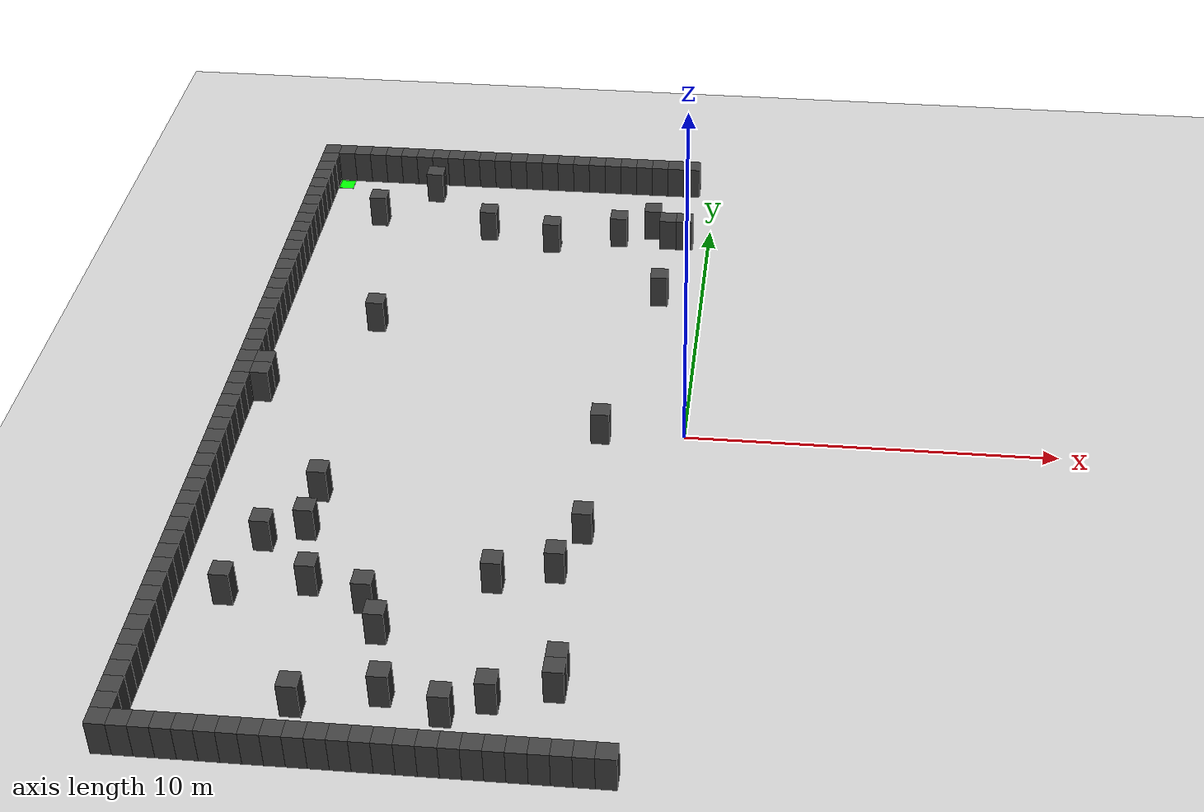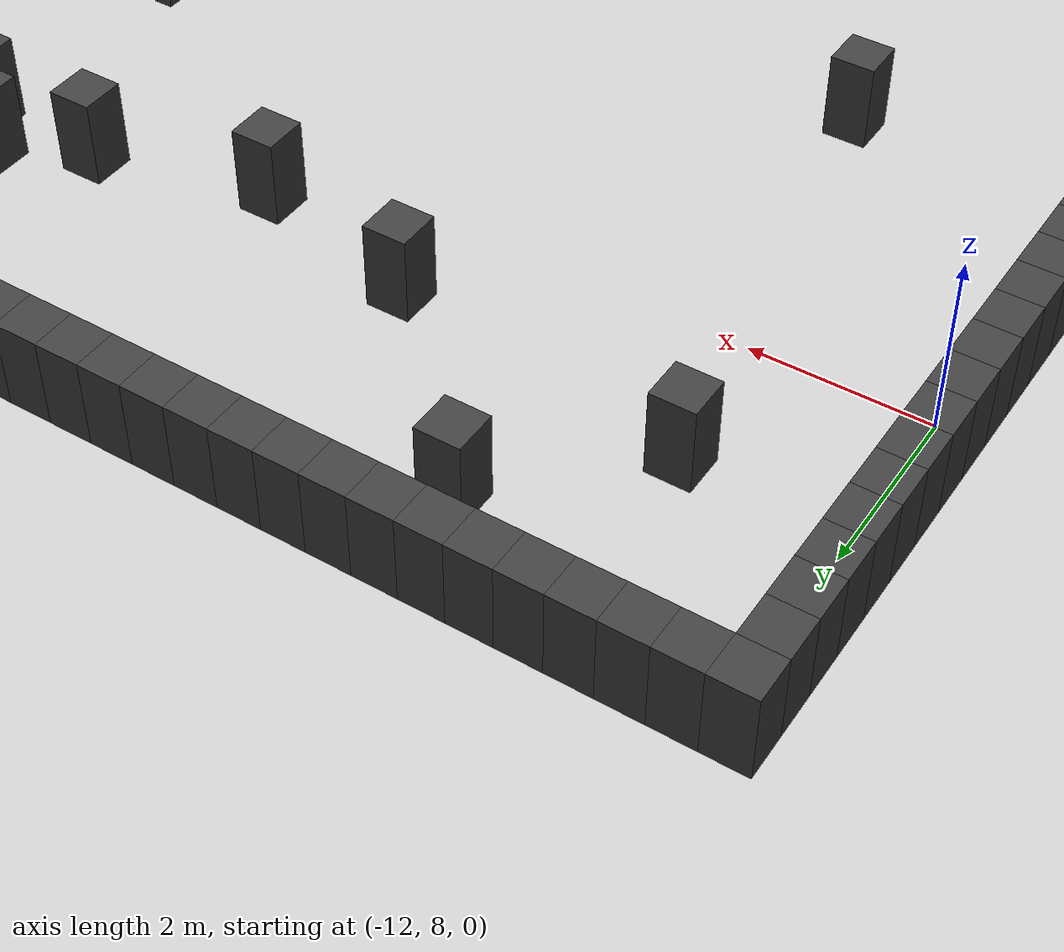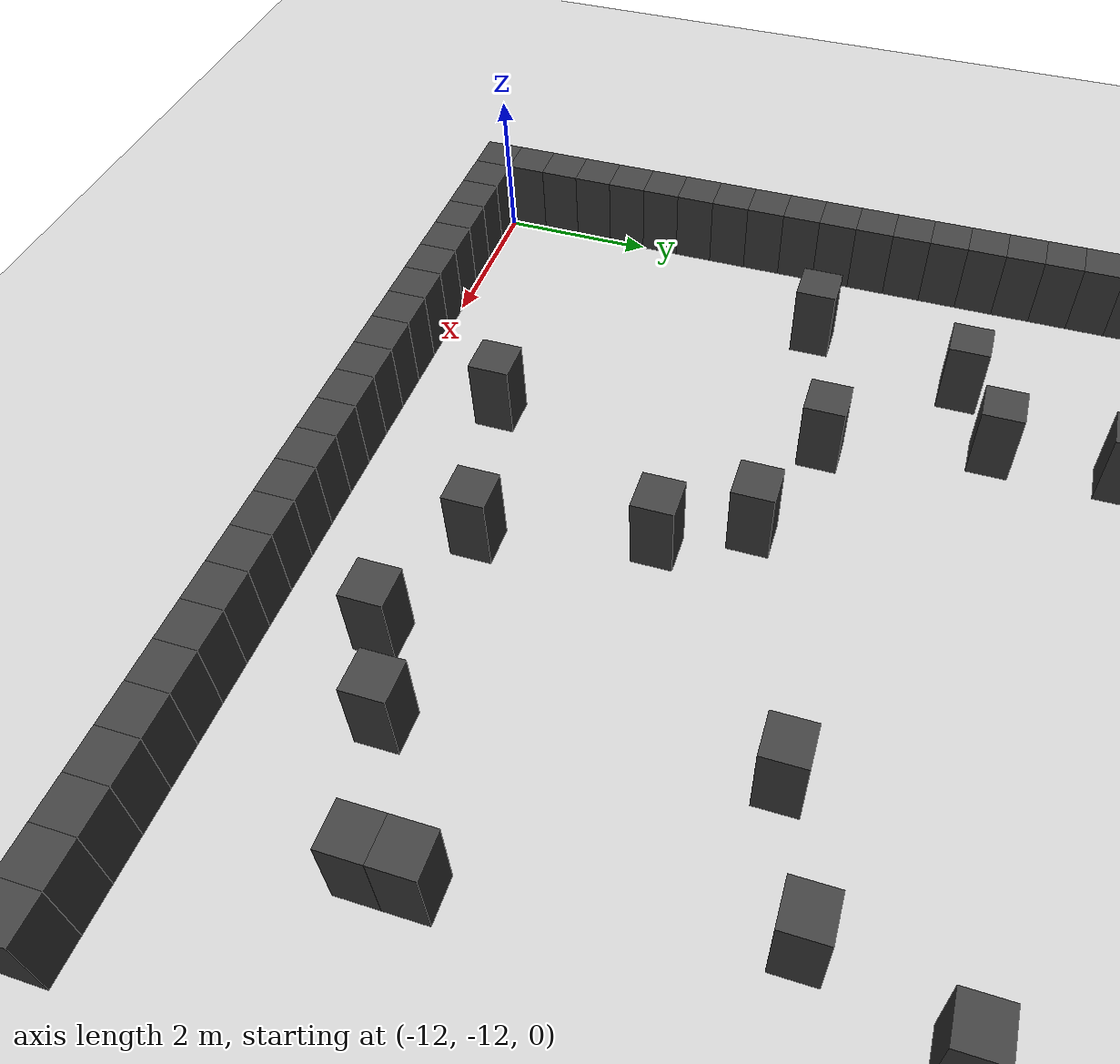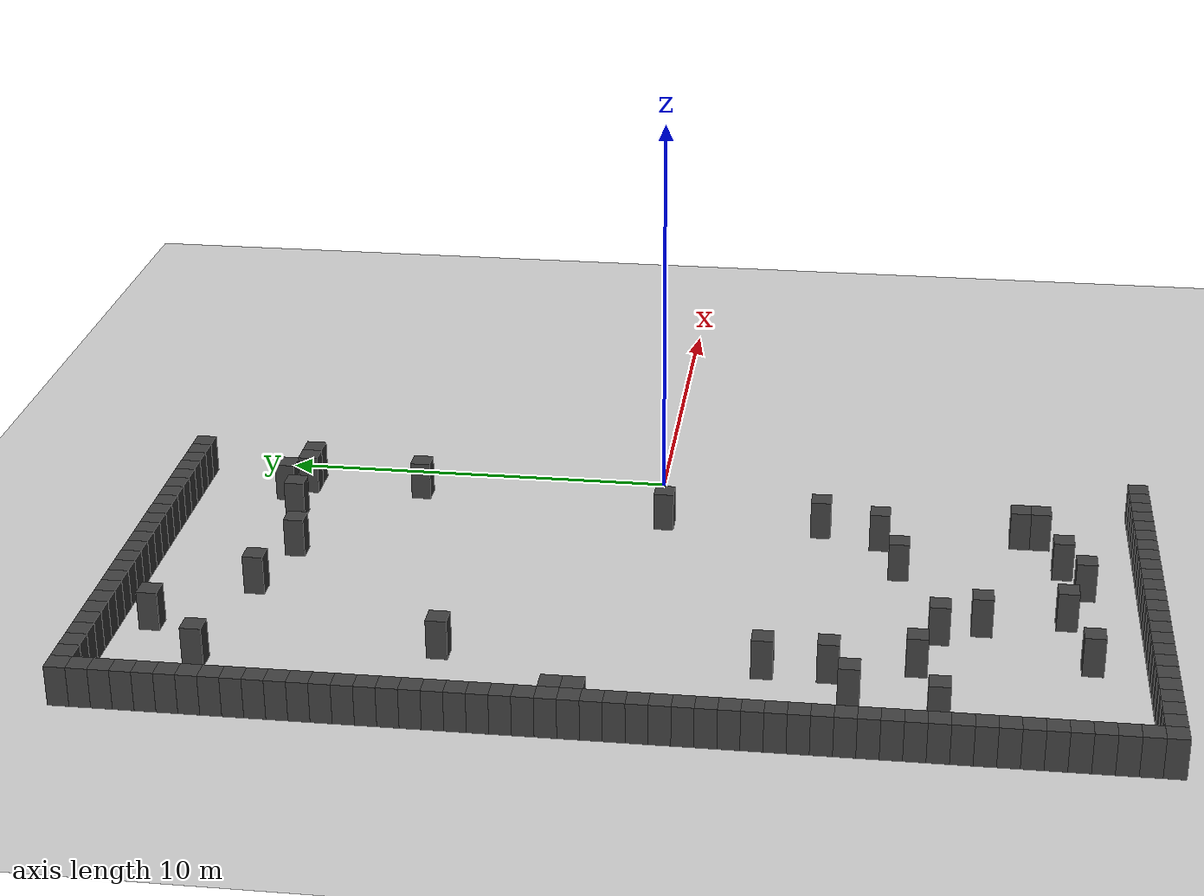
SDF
<sdf version="1.7">
 <world name="map_62">
  <model name="ground_plane">
   <static>true</static>
   <link name="link">
    <collision name="collision">
     <geometry><plane><normal>0 0 1</normal><size>200 200</size></plane></geometry>
    </collision>
    <visual name="visual">
     <geometry><plane><normal>0 0 1</normal><size>200 200</size></plane></geometry>
     <material><ambient>0.8 0.8 0.8 1</ambient><diffuse>0.8 0.8 0.8 1</diffuse></material>
    </visual>
   </link>
  </model>
  <model name="maze_environment">
   <static>true</static>
   <link name="wall_0">
    <pose>-12.250 12.250 0.500 0 0 0</pose>
    <collision name="col"><geometry><box><size>0.5 0.5 1.0</size></box></geometry></collision>
    <visual name="vis">
     <geometry><box><size>0.5 0.5 1.0</size></box></geometry>
     <material><ambient>0.15 0.15 0.15 1</ambient><diffuse>0.25 0.25 0.25 1</diffuse></material>
    </visual>
   </link>
   <link name="wall_1">
    <pose>-11.750 12.250 0.500 0 0 0</pose>
    <collision name="col"><geometry><box><size>0.5 0.5 1.0</size></box></geometry></collision>
    <visual name="vis">
     <geometry><box><size>0.5 0.5 1.0</size></box></geometry>
     <material><ambient>0.15 0.15 0.15 1</ambient><diffuse>0.25 0.25 0.25 1</diffuse></material>
    </visual>
   </link>
   <link name="wall_2">
    <pose>-11.250 12.250 0.500 0 0 0</pose>
    <collision name="col"><geometry><box><size>0.5 0.5 1.0</size></box></geometry></collision>
    <visual name="vis">
     <geometry><box><size>0.5 0.5 1.0</size></box></geometry>
     <material><ambient>0.15 0.15 0.15 1</ambient><diffuse>0.25 0.25 0.25 1</diffuse></material>
    </visual>
   </link>
   <link name="wall_3">
    <pose>-10.750 12.250 0.500 0 0 0</pose>
    <collision name="col"><geometry><box><size>0.5 0.5 1.0</size></box></geometry></collision>
    <visual name="vis">
     <geometry><box><size>0.5 0.5 1.0</size></box></geometry>
     <material><ambient>0.15 0.15 0.15 1</ambient><diffuse>0.25 0.25 0.25 1</diffuse></material>
    </visual>
   </link>
   <link name="wall_4">
    <pose>-10.250 12.250 0.500 0 0 0</pose>
    <collision name="col"><geometry><box><size>0.5 0.5 1.0</size></box></geometry></collision>
    <visual name="vis">
     <geometry><box><size>0.5 0.5 1.0</size></box></geometry>
     <material><ambient>0.15 0.15 0.15 1</ambient><diffuse>0.25 0.25 0.25 1</diffuse></material>
    </visual>
   </link>
   <link name="wall_5">
    <pose>-9.750 12.250 0.500 0 0 0</pose>
    <collision name="col"><geometry><box><size>0.5 0.5 1.0</size></box></geometry></collision>
    <visual name="vis">
     <geometry><box><size>0.5 0.5 1.0</size></box></geometry>
     <material><ambient>0.15 0.15 0.15 1</ambient><diffuse>0.25 0.25 0.25 1</diffuse></material>
    </visual>
   </link>
   <link name="wall_6">
    <pose>-9.250 12.250 0.500 0 0 0</pose>
    <collision name="col"><geometry><box><size>0.5 0.5 1.0</size></box></geometry></collision>
    <visual name="vis">
     <geometry><box><size>0.5 0.5 1.0</size></box></geometry>
     <material><ambient>0.15 0.15 0.15 1</ambient><diffuse>0.25 0.25 0.25 1</diffuse></material>
    </visual>
   </link>
   <link name="wall_7">
    <pose>-8.750 12.250 0.500 0 0 0</pose>
    <collision name="col"><geometry><box><size>0.5 0.5 1.0</size></box></geometry></collision>
    <visual name="vis">
     <geometry><box><size>0.5 0.5 1.0</size></box></geometry>
     <material><ambient>0.15 0.15 0.15 1</ambient><diffuse>0.25 0.25 0.25 1</diffuse></material>
    </visual>
   </link>
   <link name="wall_8">
    <pose>-8.250 12.250 0.500 0 0 0</pose>
    <collision name="col"><geometry><box><size>0.5 0.5 1.0</size></box></geometry></collision>
    <visual name="vis">
     <geometry><box><size>0.5 0.5 1.0</size></box></geometry>
     <material><ambient>0.15 0.15 0.15 1</ambient><diffuse>0.25 0.25 0.25 1</diffuse></material>
    </visual>
   </link>
   <link name="wall_9">
    <pose>-7.750 12.250 0.500 0 0 0</pose>
    <collision name="col"><geometry><box><size>0.5 0.5 1.0</size></box></geometry></collision>
    <visual name="vis">
     <geometry><box><size>0.5 0.5 1.0</size></box></geometry>
     <material><ambient>0.15 0.15 0.15 1</ambient><diffuse>0.25 0.25 0.25 1</diffuse></material>
    </visual>
   </link>
   <link name="wall_10">
    <pose>-7.250 12.250 0.500 0 0 0</pose>
    <collision name="col"><geometry><box><size>0.5 0.5 1.0</size></box></geometry></collision>
    <visual name="vis">
     <geometry><box><size>0.5 0.5 1.0</size></box></geometry>
     <material><ambient>0.15 0.15 0.15 1</ambient><diffuse>0.25 0.25 0.25 1</diffuse></material>
    </visual>
   </link>
   <link name="wall_11">
    <pose>-6.750 12.250 0.500 0 0 0</pose>
    <collision name="col"><geometry><box><size>0.5 0.5 1.0</size></box></geometry></collision>
    <visual name="vis">
     <geometry><box><size>0.5 0.5 1.0</size></box></geometry>
     <material><ambient>0.15 0.15 0.15 1</ambient><diffuse>0.25 0.25 0.25 1</diffuse></material>
    </visual>
   </link>
   <link name="wall_12">
    <pose>-6.250 12.250 0.500 0 0 0</pose>
    <collision name="col"><geometry><box><size>0.5 0.5 1.0</size></box></geometry></collision>
    <visual name="vis">
     <geometry><box><size>0.5 0.5 1.0</size></box></geometry>
     <material><ambient>0.15 0.15 0.15 1</ambient><diffuse>0.25 0.25 0.25 1</diffuse></material>
    </visual>
   </link>
   <link name="wall_13">
    <pose>-5.750 12.250 0.500 0 0 0</pose>
    <collision name="col"><geometry><box><size>0.5 0.5 1.0</size></box></geometry></collision>
    <visual name="vis">
     <geometry><box><size>0.5 0.5 1.0</size></box></geometry>
     <material><ambient>0.15 0.15 0.15 1</ambient><diffuse>0.25 0.25 0.25 1</diffuse></material>
    </visual>
   </link>
   <link name="wall_14">
    <pose>-5.250 12.250 0.500 0 0 0</pose>
    <collision name="col"><geometry><box><size>0.5 0.5 1.0</size></box></geometry></collision>
    <visual name="vis">
     <geometry><box><size>0.5 0.5 1.0</size></box></geometry>
     <material><ambient>0.15 0.15 0.15 1</ambient><diffuse>0.25 0.25 0.25 1</diffuse></material>
    </visual>
   </link>
   <link name="wall_15">
    <pose>-4.750 12.250 0.500 0 0 0</pose>
    <collision name="col"><geometry><box><size>0.5 0.5 1.0</size></box></geometry></collision>
    <visual name="vis">
     <geometry><box><size>0.5 0.5 1.0</size></box></geometry>
     <material><ambient>0.15 0.15 0.15 1</ambient><diffuse>0.25 0.25 0.25 1</diffuse></material>
    </visual>
   </link>
   <link name="wall_16">
    <pose>-4.250 12.250 0.500 0 0 0</pose>
    <collision name="col"><geometry><box><size>0.5 0.5 1.0</size></box></geometry></collision>
    <visual name="vis">
     <geometry><box><size>0.5 0.5 1.0</size></box></geometry>
     <material><ambient>0.15 0.15 0.15 1</ambient><diffuse>0.25 0.25 0.25 1</diffuse></material>
    </visual>
   </link>
   <link name="wall_17">
    <pose>-3.750 12.250 0.500 0 0 0</pose>
    <collision name="col"><geometry><box><size>0.5 0.5 1.0</size></box></geometry></collision>
    <visual name="vis">
     <geometry><box><size>0.5 0.5 1.0</size></box></geometry>
     <material><ambient>0.15 0.15 0.15 1</ambient><diffuse>0.25 0.25 0.25 1</diffuse></material>
    </visual>
   </link>
   <link name="wall_18">
    <pose>-3.250 12.250 0.500 0 0 0</pose>
    <collision name="col"><geometry><box><size>0.5 0.5 1.0</size></box></geometry></collision>
    <visual name="vis">
     <geometry><box><size>0.5 0.5 1.0</size></box></geometry>
     <material><ambient>0.15 0.15 0.15 1</ambient><diffuse>0.25 0.25 0.25 1</diffuse></material>
    </visual>
   </link>
   <link name="wall_19">
    <pose>-2.750 12.250 0.500 0 0 0</pose>
    <collision name="col"><geometry><box><size>0.5 0.5 1.0</size></box></geometry></collision>
    <visual name="vis">
     <geometry><box><size>0.5 0.5 1.0</size></box></geometry>
     <material><ambient>0.15 0.15 0.15 1</ambient><diffuse>0.25 0.25 0.25 1</diffuse></material>
    </visual>
   </link>
   <link name="wall_20">
    <pose>-2.250 12.250 0.500 0 0 0</pose>
    <collision name="col"><geometry><box><size>0.5 0.5 1.0</size></box></geometry></collision>
    <visual name="vis">
     <geometry><box><size>0.5 0.5 1.0</size></box></geometry>
     <material><ambient>0.15 0.15 0.15 1</ambient><diffuse>0.25 0.25 0.25 1</diffuse></material>
    </visual>
   </link>
   <link name="wall_21">
    <pose>-1.750 12.250 0.500 0 0 0</pose>
    <collision name="col"><geometry><box><size>0.5 0.5 1.0</size></box></geometry></collision>
    <visual name="vis">
     <geometry><box><size>0.5 0.5 1.0</size></box></geometry>
     <material><ambient>0.15 0.15 0.15 1</ambient><diffuse>0.25 0.25 0.25 1</diffuse></material>
    </visual>
   </link>
   <link name="wall_22">
    <pose>-1.250 12.250 0.500 0 0 0</pose>
    <collision name="col"><geometry><box><size>0.5 0.5 1.0</size></box></geometry></collision>
    <visual name="vis">
     <geometry><box><size>0.5 0.5 1.0</size></box></geometry>
     <material><ambient>0.15 0.15 0.15 1</ambient><diffuse>0.25 0.25 0.25 1</diffuse></material>
    </visual>
   </link>
   <link name="wall_23">
    <pose>-0.750 12.250 0.500 0 0 0</pose>
    <collision name="col"><geometry><box><size>0.5 0.5 1.0</size></box></geometry></collision>
    <visual name="vis">
     <geometry><box><size>0.5 0.5 1.0</size></box></geometry>
     <material><ambient>0.15 0.15 0.15 1</ambient><diffuse>0.25 0.25 0.25 1</diffuse></material>
    </visual>
   </link>
   <link name="wall_50">
    <pose>-12.250 11.750 0.500 0 0 0</pose>
    <collision name="col"><geometry><box><size>0.5 0.5 1.0</size></box></geometry></collision>
    <visual name="vis">
     <geometry><box><size>0.5 0.5 1.0</size></box></geometry>
     <material><ambient>0.15 0.15 0.15 1</ambient><diffuse>0.25 0.25 0.25 1</diffuse></material>
    </visual>
   </link>
   <link name="wall_52">
    <pose>-12.250 11.250 0.500 0 0 0</pose>
    <collision name="col"><geometry><box><size>0.5 0.5 1.0</size></box></geometry></collision>
    <visual name="vis">
     <geometry><box><size>0.5 0.5 1.0</size></box></geometry>
     <material><ambient>0.15 0.15 0.15 1</ambient><diffuse>0.25 0.25 0.25 1</diffuse></material>
    </visual>
   </link>
   <link name="wall_53">
    <pose>-8.750 11.250 0.500 0 0 0</pose>
    <collision name="col"><geometry><box><size>0.5 0.5 1.0</size></box></geometry></collision>
    <visual name="vis">
     <geometry><box><size>0.5 0.5 1.0</size></box></geometry>
     <material><ambient>0.15 0.15 0.15 1</ambient><diffuse>0.25 0.25 0.25 1</diffuse></material>
    </visual>
   </link>
   <link name="wall_56">
    <pose>-12.250 10.750 0.500 0 0 0</pose>
    <collision name="col"><geometry><box><size>0.5 0.5 1.0</size></box></geometry></collision>
    <visual name="vis">
     <geometry><box><size>0.5 0.5 1.0</size></box></geometry>
     <material><ambient>0.15 0.15 0.15 1</ambient><diffuse>0.25 0.25 0.25 1</diffuse></material>
    </visual>
   </link>
   <link name="wall_58">
    <pose>-12.250 10.250 0.500 0 0 0</pose>
    <collision name="col"><geometry><box><size>0.5 0.5 1.0</size></box></geometry></collision>
    <visual name="vis">
     <geometry><box><size>0.5 0.5 1.0</size></box></geometry>
     <material><ambient>0.15 0.15 0.15 1</ambient><diffuse>0.25 0.25 0.25 1</diffuse></material>
    </visual>
   </link>
   <link name="wall_60">
    <pose>-12.250 9.750 0.500 0 0 0</pose>
    <collision name="col"><geometry><box><size>0.5 0.5 1.0</size></box></geometry></collision>
    <visual name="vis">
     <geometry><box><size>0.5 0.5 1.0</size></box></geometry>
     <material><ambient>0.15 0.15 0.15 1</ambient><diffuse>0.25 0.25 0.25 1</diffuse></material>
    </visual>
   </link>
   <link name="wall_61">
    <pose>-10.250 9.750 0.500 0 0 0</pose>
    <collision name="col"><geometry><box><size>0.5 0.5 1.0</size></box></geometry></collision>
    <visual name="vis">
     <geometry><box><size>0.5 0.5 1.0</size></box></geometry>
     <material><ambient>0.15 0.15 0.15 1</ambient><diffuse>0.25 0.25 0.25 1</diffuse></material>
    </visual>
   </link>
   <link name="wall_62">
    <pose>-1.750 9.750 0.500 0 0 0</pose>
    <collision name="col"><geometry><box><size>0.5 0.5 1.0</size></box></geometry></collision>
    <visual name="vis">
     <geometry><box><size>0.5 0.5 1.0</size></box></geometry>
     <material><ambient>0.15 0.15 0.15 1</ambient><diffuse>0.25 0.25 0.25 1</diffuse></material>
    </visual>
   </link>
   <link name="wall_65">
    <pose>-12.250 9.250 0.500 0 0 0</pose>
    <collision name="col"><geometry><box><size>0.5 0.5 1.0</size></box></geometry></collision>
    <visual name="vis">
     <geometry><box><size>0.5 0.5 1.0</size></box></geometry>
     <material><ambient>0.15 0.15 0.15 1</ambient><diffuse>0.25 0.25 0.25 1</diffuse></material>
    </visual>
   </link>
   <link name="wall_66">
    <pose>-6.750 9.250 0.500 0 0 0</pose>
    <collision name="col"><geometry><box><size>0.5 0.5 1.0</size></box></geometry></collision>
    <visual name="vis">
     <geometry><box><size>0.5 0.5 1.0</size></box></geometry>
     <material><ambient>0.15 0.15 0.15 1</ambient><diffuse>0.25 0.25 0.25 1</diffuse></material>
    </visual>
   </link>
   <link name="wall_67">
    <pose>-2.750 9.250 0.500 0 0 0</pose>
    <collision name="col"><geometry><box><size>0.5 0.5 1.0</size></box></geometry></collision>
    <visual name="vis">
     <geometry><box><size>0.5 0.5 1.0</size></box></geometry>
     <material><ambient>0.15 0.15 0.15 1</ambient><diffuse>0.25 0.25 0.25 1</diffuse></material>
    </visual>
   </link>
   <link name="wall_68">
    <pose>-1.250 9.250 0.500 0 0 0</pose>
    <collision name="col"><geometry><box><size>0.5 0.5 1.0</size></box></geometry></collision>
    <visual name="vis">
     <geometry><box><size>0.5 0.5 1.0</size></box></geometry>
     <material><ambient>0.15 0.15 0.15 1</ambient><diffuse>0.25 0.25 0.25 1</diffuse></material>
    </visual>
   </link>
   <link name="wall_69">
    <pose>-0.750 9.250 0.500 0 0 0</pose>
    <collision name="col"><geometry><box><size>0.5 0.5 1.0</size></box></geometry></collision>
    <visual name="vis">
     <geometry><box><size>0.5 0.5 1.0</size></box></geometry>
     <material><ambient>0.15 0.15 0.15 1</ambient><diffuse>0.25 0.25 0.25 1</diffuse></material>
    </visual>
   </link>
   <link name="wall_72">
    <pose>-12.250 8.750 0.500 0 0 0</pose>
    <collision name="col"><geometry><box><size>0.5 0.5 1.0</size></box></geometry></collision>
    <visual name="vis">
     <geometry><box><size>0.5 0.5 1.0</size></box></geometry>
     <material><ambient>0.15 0.15 0.15 1</ambient><diffuse>0.25 0.25 0.25 1</diffuse></material>
    </visual>
   </link>
   <link name="wall_73">
    <pose>-4.750 8.750 0.500 0 0 0</pose>
    <collision name="col"><geometry><box><size>0.5 0.5 1.0</size></box></geometry></collision>
    <visual name="vis">
     <geometry><box><size>0.5 0.5 1.0</size></box></geometry>
     <material><ambient>0.15 0.15 0.15 1</ambient><diffuse>0.25 0.25 0.25 1</diffuse></material>
    </visual>
   </link>
   <link name="wall_76">
    <pose>-12.250 8.250 0.500 0 0 0</pose>
    <collision name="col"><geometry><box><size>0.5 0.5 1.0</size></box></geometry></collision>
    <visual name="vis">
     <geometry><box><size>0.5 0.5 1.0</size></box></geometry>
     <material><ambient>0.15 0.15 0.15 1</ambient><diffuse>0.25 0.25 0.25 1</diffuse></material>
    </visual>
   </link>
   <link name="wall_78">
    <pose>-12.250 7.750 0.500 0 0 0</pose>
    <collision name="col"><geometry><box><size>0.5 0.5 1.0</size></box></geometry></collision>
    <visual name="vis">
     <geometry><box><size>0.5 0.5 1.0</size></box></geometry>
     <material><ambient>0.15 0.15 0.15 1</ambient><diffuse>0.25 0.25 0.25 1</diffuse></material>
    </visual>
   </link>
   <link name="wall_80">
    <pose>-12.250 7.250 0.500 0 0 0</pose>
    <collision name="col"><geometry><box><size>0.5 0.5 1.0</size></box></geometry></collision>
    <visual name="vis">
     <geometry><box><size>0.5 0.5 1.0</size></box></geometry>
     <material><ambient>0.15 0.15 0.15 1</ambient><diffuse>0.25 0.25 0.25 1</diffuse></material>
    </visual>
   </link>
   <link name="wall_82">
    <pose>-12.250 6.750 0.500 0 0 0</pose>
    <collision name="col"><geometry><box><size>0.5 0.5 1.0</size></box></geometry></collision>
    <visual name="vis">
     <geometry><box><size>0.5 0.5 1.0</size></box></geometry>
     <material><ambient>0.15 0.15 0.15 1</ambient><diffuse>0.25 0.25 0.25 1</diffuse></material>
    </visual>
   </link>
   <link name="wall_84">
    <pose>-12.250 6.250 0.500 0 0 0</pose>
    <collision name="col"><geometry><box><size>0.5 0.5 1.0</size></box></geometry></collision>
    <visual name="vis">
     <geometry><box><size>0.5 0.5 1.0</size></box></geometry>
     <material><ambient>0.15 0.15 0.15 1</ambient><diffuse>0.25 0.25 0.25 1</diffuse></material>
    </visual>
   </link>
   <link name="wall_85">
    <pose>-1.250 6.250 0.500 0 0 0</pose>
    <collision name="col"><geometry><box><size>0.5 0.5 1.0</size></box></geometry></collision>
    <visual name="vis">
     <geometry><box><size>0.5 0.5 1.0</size></box></geometry>
     <material><ambient>0.15 0.15 0.15 1</ambient><diffuse>0.25 0.25 0.25 1</diffuse></material>
    </visual>
   </link>
   <link name="wall_87">
    <pose>-12.250 5.750 0.500 0 0 0</pose>
    <collision name="col"><geometry><box><size>0.5 0.5 1.0</size></box></geometry></collision>
    <visual name="vis">
     <geometry><box><size>0.5 0.5 1.0</size></box></geometry>
     <material><ambient>0.15 0.15 0.15 1</ambient><diffuse>0.25 0.25 0.25 1</diffuse></material>
    </visual>
   </link>
   <link name="wall_91">
    <pose>-12.250 5.250 0.500 0 0 0</pose>
    <collision name="col"><geometry><box><size>0.5 0.5 1.0</size></box></geometry></collision>
    <visual name="vis">
     <geometry><box><size>0.5 0.5 1.0</size></box></geometry>
     <material><ambient>0.15 0.15 0.15 1</ambient><diffuse>0.25 0.25 0.25 1</diffuse></material>
    </visual>
   </link>
   <link name="wall_94">
    <pose>-12.250 4.750 0.500 0 0 0</pose>
    <collision name="col"><geometry><box><size>0.5 0.5 1.0</size></box></geometry></collision>
    <visual name="vis">
     <geometry><box><size>0.5 0.5 1.0</size></box></geometry>
     <material><ambient>0.15 0.15 0.15 1</ambient><diffuse>0.25 0.25 0.25 1</diffuse></material>
    </visual>
   </link>
   <link name="wall_96">
    <pose>-12.250 4.250 0.500 0 0 0</pose>
    <collision name="col"><geometry><box><size>0.5 0.5 1.0</size></box></geometry></collision>
    <visual name="vis">
     <geometry><box><size>0.5 0.5 1.0</size></box></geometry>
     <material><ambient>0.15 0.15 0.15 1</ambient><diffuse>0.25 0.25 0.25 1</diffuse></material>
    </visual>
   </link>
   <link name="wall_97">
    <pose>-9.250 4.250 0.500 0 0 0</pose>
    <collision name="col"><geometry><box><size>0.5 0.5 1.0</size></box></geometry></collision>
    <visual name="vis">
     <geometry><box><size>0.5 0.5 1.0</size></box></geometry>
     <material><ambient>0.15 0.15 0.15 1</ambient><diffuse>0.25 0.25 0.25 1</diffuse></material>
    </visual>
   </link>
   <link name="wall_99">
    <pose>-12.250 3.750 0.500 0 0 0</pose>
    <collision name="col"><geometry><box><size>0.5 0.5 1.0</size></box></geometry></collision>
    <visual name="vis">
     <geometry><box><size>0.5 0.5 1.0</size></box></geometry>
     <material><ambient>0.15 0.15 0.15 1</ambient><diffuse>0.25 0.25 0.25 1</diffuse></material>
    </visual>
   </link>
   <link name="wall_102">
    <pose>-12.250 3.250 0.500 0 0 0</pose>
    <collision name="col"><geometry><box><size>0.5 0.5 1.0</size></box></geometry></collision>
    <visual name="vis">
     <geometry><box><size>0.5 0.5 1.0</size></box></geometry>
     <material><ambient>0.15 0.15 0.15 1</ambient><diffuse>0.25 0.25 0.25 1</diffuse></material>
    </visual>
   </link>
   <link name="wall_104">
    <pose>-12.250 2.750 0.500 0 0 0</pose>
    <collision name="col"><geometry><box><size>0.5 0.5 1.0</size></box></geometry></collision>
    <visual name="vis">
     <geometry><box><size>0.5 0.5 1.0</size></box></geometry>
     <material><ambient>0.15 0.15 0.15 1</ambient><diffuse>0.25 0.25 0.25 1</diffuse></material>
    </visual>
   </link>
   <link name="wall_108">
    <pose>-12.250 2.250 0.500 0 0 0</pose>
    <collision name="col"><geometry><box><size>0.5 0.5 1.0</size></box></geometry></collision>
    <visual name="vis">
     <geometry><box><size>0.5 0.5 1.0</size></box></geometry>
     <material><ambient>0.15 0.15 0.15 1</ambient><diffuse>0.25 0.25 0.25 1</diffuse></material>
    </visual>
   </link>
   <link name="wall_111">
    <pose>-12.250 1.750 0.500 0 0 0</pose>
    <collision name="col"><geometry><box><size>0.5 0.5 1.0</size></box></geometry></collision>
    <visual name="vis">
     <geometry><box><size>0.5 0.5 1.0</size></box></geometry>
     <material><ambient>0.15 0.15 0.15 1</ambient><diffuse>0.25 0.25 0.25 1</diffuse></material>
    </visual>
   </link>
   <link name="wall_113">
    <pose>-12.250 1.250 0.500 0 0 0</pose>
    <collision name="col"><geometry><box><size>0.5 0.5 1.0</size></box></geometry></collision>
    <visual name="vis">
     <geometry><box><size>0.5 0.5 1.0</size></box></geometry>
     <material><ambient>0.15 0.15 0.15 1</ambient><diffuse>0.25 0.25 0.25 1</diffuse></material>
    </visual>
   </link>
   <link name="wall_114">
    <pose>-11.750 1.250 0.500 0 0 0</pose>
    <collision name="col"><geometry><box><size>0.5 0.5 1.0</size></box></geometry></collision>
    <visual name="vis">
     <geometry><box><size>0.5 0.5 1.0</size></box></geometry>
     <material><ambient>0.15 0.15 0.15 1</ambient><diffuse>0.25 0.25 0.25 1</diffuse></material>
    </visual>
   </link>
   <link name="wall_116">
    <pose>-12.250 0.750 0.500 0 0 0</pose>
    <collision name="col"><geometry><box><size>0.5 0.5 1.0</size></box></geometry></collision>
    <visual name="vis">
     <geometry><box><size>0.5 0.5 1.0</size></box></geometry>
     <material><ambient>0.15 0.15 0.15 1</ambient><diffuse>0.25 0.25 0.25 1</diffuse></material>
    </visual>
   </link>
   <link name="wall_117">
    <pose>-11.750 0.750 0.500 0 0 0</pose>
    <collision name="col"><geometry><box><size>0.5 0.5 1.0</size></box></geometry></collision>
    <visual name="vis">
     <geometry><box><size>0.5 0.5 1.0</size></box></geometry>
     <material><ambient>0.15 0.15 0.15 1</ambient><diffuse>0.25 0.25 0.25 1</diffuse></material>
    </visual>
   </link>
   <link name="wall_119">
    <pose>-12.250 0.250 0.500 0 0 0</pose>
    <collision name="col"><geometry><box><size>0.5 0.5 1.0</size></box></geometry></collision>
    <visual name="vis">
     <geometry><box><size>0.5 0.5 1.0</size></box></geometry>
     <material><ambient>0.15 0.15 0.15 1</ambient><diffuse>0.25 0.25 0.25 1</diffuse></material>
    </visual>
   </link>
   <link name="wall_121">
    <pose>-12.250 -0.250 0.500 0 0 0</pose>
    <collision name="col"><geometry><box><size>0.5 0.5 1.0</size></box></geometry></collision>
    <visual name="vis">
     <geometry><box><size>0.5 0.5 1.0</size></box></geometry>
     <material><ambient>0.15 0.15 0.15 1</ambient><diffuse>0.25 0.25 0.25 1</diffuse></material>
    </visual>
   </link>
   <link name="wall_122">
    <pose>-2.250 -0.250 0.500 0 0 0</pose>
    <collision name="col"><geometry><box><size>0.5 0.5 1.0</size></box></geometry></collision>
    <visual name="vis">
     <geometry><box><size>0.5 0.5 1.0</size></box></geometry>
     <material><ambient>0.15 0.15 0.15 1</ambient><diffuse>0.25 0.25 0.25 1</diffuse></material>
    </visual>
   </link>
   <link name="wall_126">
    <pose>-12.250 -0.750 0.500 0 0 0</pose>
    <collision name="col"><geometry><box><size>0.5 0.5 1.0</size></box></geometry></collision>
    <visual name="vis">
     <geometry><box><size>0.5 0.5 1.0</size></box></geometry>
     <material><ambient>0.15 0.15 0.15 1</ambient><diffuse>0.25 0.25 0.25 1</diffuse></material>
    </visual>
   </link>
   <link name="wall_129">
    <pose>-12.250 -1.250 0.500 0 0 0</pose>
    <collision name="col"><geometry><box><size>0.5 0.5 1.0</size></box></geometry></collision>
    <visual name="vis">
     <geometry><box><size>0.5 0.5 1.0</size></box></geometry>
     <material><ambient>0.15 0.15 0.15 1</ambient><diffuse>0.25 0.25 0.25 1</diffuse></material>
    </visual>
   </link>
   <link name="wall_131">
    <pose>-12.250 -1.750 0.500 0 0 0</pose>
    <collision name="col"><geometry><box><size>0.5 0.5 1.0</size></box></geometry></collision>
    <visual name="vis">
     <geometry><box><size>0.5 0.5 1.0</size></box></geometry>
     <material><ambient>0.15 0.15 0.15 1</ambient><diffuse>0.25 0.25 0.25 1</diffuse></material>
    </visual>
   </link>
   <link name="wall_134">
    <pose>-12.250 -2.250 0.500 0 0 0</pose>
    <collision name="col"><geometry><box><size>0.5 0.5 1.0</size></box></geometry></collision>
    <visual name="vis">
     <geometry><box><size>0.5 0.5 1.0</size></box></geometry>
     <material><ambient>0.15 0.15 0.15 1</ambient><diffuse>0.25 0.25 0.25 1</diffuse></material>
    </visual>
   </link>
   <link name="wall_137">
    <pose>-12.250 -2.750 0.500 0 0 0</pose>
    <collision name="col"><geometry><box><size>0.5 0.5 1.0</size></box></geometry></collision>
    <visual name="vis">
     <geometry><box><size>0.5 0.5 1.0</size></box></geometry>
     <material><ambient>0.15 0.15 0.15 1</ambient><diffuse>0.25 0.25 0.25 1</diffuse></material>
    </visual>
   </link>
   <link name="wall_140">
    <pose>-12.250 -3.250 0.500 0 0 0</pose>
    <collision name="col"><geometry><box><size>0.5 0.5 1.0</size></box></geometry></collision>
    <visual name="vis">
     <geometry><box><size>0.5 0.5 1.0</size></box></geometry>
     <material><ambient>0.15 0.15 0.15 1</ambient><diffuse>0.25 0.25 0.25 1</diffuse></material>
    </visual>
   </link>
   <link name="wall_141">
    <pose>-9.250 -3.250 0.500 0 0 0</pose>
    <collision name="col"><geometry><box><size>0.5 0.5 1.0</size></box></geometry></collision>
    <visual name="vis">
     <geometry><box><size>0.5 0.5 1.0</size></box></geometry>
     <material><ambient>0.15 0.15 0.15 1</ambient><diffuse>0.25 0.25 0.25 1</diffuse></material>
    </visual>
   </link>
   <link name="wall_143">
    <pose>-12.250 -3.750 0.500 0 0 0</pose>
    <collision name="col"><geometry><box><size>0.5 0.5 1.0</size></box></geometry></collision>
    <visual name="vis">
     <geometry><box><size>0.5 0.5 1.0</size></box></geometry>
     <material><ambient>0.15 0.15 0.15 1</ambient><diffuse>0.25 0.25 0.25 1</diffuse></material>
    </visual>
   </link>
   <link name="wall_145">
    <pose>-12.250 -4.250 0.500 0 0 0</pose>
    <collision name="col"><geometry><box><size>0.5 0.5 1.0</size></box></geometry></collision>
    <visual name="vis">
     <geometry><box><size>0.5 0.5 1.0</size></box></geometry>
     <material><ambient>0.15 0.15 0.15 1</ambient><diffuse>0.25 0.25 0.25 1</diffuse></material>
    </visual>
   </link>
   <link name="wall_146">
    <pose>-2.250 -4.250 0.500 0 0 0</pose>
    <collision name="col"><geometry><box><size>0.5 0.5 1.0</size></box></geometry></collision>
    <visual name="vis">
     <geometry><box><size>0.5 0.5 1.0</size></box></geometry>
     <material><ambient>0.15 0.15 0.15 1</ambient><diffuse>0.25 0.25 0.25 1</diffuse></material>
    </visual>
   </link>
   <link name="wall_148">
    <pose>-12.250 -4.750 0.500 0 0 0</pose>
    <collision name="col"><geometry><box><size>0.5 0.5 1.0</size></box></geometry></collision>
    <visual name="vis">
     <geometry><box><size>0.5 0.5 1.0</size></box></geometry>
     <material><ambient>0.15 0.15 0.15 1</ambient><diffuse>0.25 0.25 0.25 1</diffuse></material>
    </visual>
   </link>
   <link name="wall_149">
    <pose>-9.250 -4.750 0.500 0 0 0</pose>
    <collision name="col"><geometry><box><size>0.5 0.5 1.0</size></box></geometry></collision>
    <visual name="vis">
     <geometry><box><size>0.5 0.5 1.0</size></box></geometry>
     <material><ambient>0.15 0.15 0.15 1</ambient><diffuse>0.25 0.25 0.25 1</diffuse></material>
    </visual>
   </link>
   <link name="wall_152">
    <pose>-12.250 -5.250 0.500 0 0 0</pose>
    <collision name="col"><geometry><box><size>0.5 0.5 1.0</size></box></geometry></collision>
    <visual name="vis">
     <geometry><box><size>0.5 0.5 1.0</size></box></geometry>
     <material><ambient>0.15 0.15 0.15 1</ambient><diffuse>0.25 0.25 0.25 1</diffuse></material>
    </visual>
   </link>
   <link name="wall_153">
    <pose>-10.250 -5.250 0.500 0 0 0</pose>
    <collision name="col"><geometry><box><size>0.5 0.5 1.0</size></box></geometry></collision>
    <visual name="vis">
     <geometry><box><size>0.5 0.5 1.0</size></box></geometry>
     <material><ambient>0.15 0.15 0.15 1</ambient><diffuse>0.25 0.25 0.25 1</diffuse></material>
    </visual>
   </link>
   <link name="wall_155">
    <pose>-12.250 -5.750 0.500 0 0 0</pose>
    <collision name="col"><geometry><box><size>0.5 0.5 1.0</size></box></geometry></collision>
    <visual name="vis">
     <geometry><box><size>0.5 0.5 1.0</size></box></geometry>
     <material><ambient>0.15 0.15 0.15 1</ambient><diffuse>0.25 0.25 0.25 1</diffuse></material>
    </visual>
   </link>
   <link name="wall_156">
    <pose>-2.750 -5.750 0.500 0 0 0</pose>
    <collision name="col"><geometry><box><size>0.5 0.5 1.0</size></box></geometry></collision>
    <visual name="vis">
     <geometry><box><size>0.5 0.5 1.0</size></box></geometry>
     <material><ambient>0.15 0.15 0.15 1</ambient><diffuse>0.25 0.25 0.25 1</diffuse></material>
    </visual>
   </link>
   <link name="wall_159">
    <pose>-12.250 -6.250 0.500 0 0 0</pose>
    <collision name="col"><geometry><box><size>0.5 0.5 1.0</size></box></geometry></collision>
    <visual name="vis">
     <geometry><box><size>0.5 0.5 1.0</size></box></geometry>
     <material><ambient>0.15 0.15 0.15 1</ambient><diffuse>0.25 0.25 0.25 1</diffuse></material>
    </visual>
   </link>
   <link name="wall_160">
    <pose>-4.250 -6.250 0.500 0 0 0</pose>
    <collision name="col"><geometry><box><size>0.5 0.5 1.0</size></box></geometry></collision>
    <visual name="vis">
     <geometry><box><size>0.5 0.5 1.0</size></box></geometry>
     <material><ambient>0.15 0.15 0.15 1</ambient><diffuse>0.25 0.25 0.25 1</diffuse></material>
    </visual>
   </link>
   <link name="wall_162">
    <pose>-12.250 -6.750 0.500 0 0 0</pose>
    <collision name="col"><geometry><box><size>0.5 0.5 1.0</size></box></geometry></collision>
    <visual name="vis">
     <geometry><box><size>0.5 0.5 1.0</size></box></geometry>
     <material><ambient>0.15 0.15 0.15 1</ambient><diffuse>0.25 0.25 0.25 1</diffuse></material>
    </visual>
   </link>
   <link name="wall_163">
    <pose>-8.750 -6.750 0.500 0 0 0</pose>
    <collision name="col"><geometry><box><size>0.5 0.5 1.0</size></box></geometry></collision>
    <visual name="vis">
     <geometry><box><size>0.5 0.5 1.0</size></box></geometry>
     <material><ambient>0.15 0.15 0.15 1</ambient><diffuse>0.25 0.25 0.25 1</diffuse></material>
    </visual>
   </link>
   <link name="wall_166">
    <pose>-12.250 -7.250 0.500 0 0 0</pose>
    <collision name="col"><geometry><box><size>0.5 0.5 1.0</size></box></geometry></collision>
    <visual name="vis">
     <geometry><box><size>0.5 0.5 1.0</size></box></geometry>
     <material><ambient>0.15 0.15 0.15 1</ambient><diffuse>0.25 0.25 0.25 1</diffuse></material>
    </visual>
   </link>
   <link name="wall_167">
    <pose>-10.750 -7.250 0.500 0 0 0</pose>
    <collision name="col"><geometry><box><size>0.5 0.5 1.0</size></box></geometry></collision>
    <visual name="vis">
     <geometry><box><size>0.5 0.5 1.0</size></box></geometry>
     <material><ambient>0.15 0.15 0.15 1</ambient><diffuse>0.25 0.25 0.25 1</diffuse></material>
    </visual>
   </link>
   <link name="wall_168">
    <pose>-7.250 -7.250 0.500 0 0 0</pose>
    <collision name="col"><geometry><box><size>0.5 0.5 1.0</size></box></geometry></collision>
    <visual name="vis">
     <geometry><box><size>0.5 0.5 1.0</size></box></geometry>
     <material><ambient>0.15 0.15 0.15 1</ambient><diffuse>0.25 0.25 0.25 1</diffuse></material>
    </visual>
   </link>
   <link name="wall_171">
    <pose>-12.250 -7.750 0.500 0 0 0</pose>
    <collision name="col"><geometry><box><size>0.5 0.5 1.0</size></box></geometry></collision>
    <visual name="vis">
     <geometry><box><size>0.5 0.5 1.0</size></box></geometry>
     <material><ambient>0.15 0.15 0.15 1</ambient><diffuse>0.25 0.25 0.25 1</diffuse></material>
    </visual>
   </link>
   <link name="wall_173">
    <pose>-12.250 -8.250 0.500 0 0 0</pose>
    <collision name="col"><geometry><box><size>0.5 0.5 1.0</size></box></geometry></collision>
    <visual name="vis">
     <geometry><box><size>0.5 0.5 1.0</size></box></geometry>
     <material><ambient>0.15 0.15 0.15 1</ambient><diffuse>0.25 0.25 0.25 1</diffuse></material>
    </visual>
   </link>
   <link name="wall_174">
    <pose>-6.750 -8.250 0.500 0 0 0</pose>
    <collision name="col"><geometry><box><size>0.5 0.5 1.0</size></box></geometry></collision>
    <visual name="vis">
     <geometry><box><size>0.5 0.5 1.0</size></box></geometry>
     <material><ambient>0.15 0.15 0.15 1</ambient><diffuse>0.25 0.25 0.25 1</diffuse></material>
    </visual>
   </link>
   <link name="wall_176">
    <pose>-12.250 -8.750 0.500 0 0 0</pose>
    <collision name="col"><geometry><box><size>0.5 0.5 1.0</size></box></geometry></collision>
    <visual name="vis">
     <geometry><box><size>0.5 0.5 1.0</size></box></geometry>
     <material><ambient>0.15 0.15 0.15 1</ambient><diffuse>0.25 0.25 0.25 1</diffuse></material>
    </visual>
   </link>
   <link name="wall_179">
    <pose>-12.250 -9.250 0.500 0 0 0</pose>
    <collision name="col"><geometry><box><size>0.5 0.5 1.0</size></box></geometry></collision>
    <visual name="vis">
     <geometry><box><size>0.5 0.5 1.0</size></box></geometry>
     <material><ambient>0.15 0.15 0.15 1</ambient><diffuse>0.25 0.25 0.25 1</diffuse></material>
    </visual>
   </link>
   <link name="wall_180">
    <pose>-2.250 -9.250 0.500 0 0 0</pose>
    <collision name="col"><geometry><box><size>0.5 0.5 1.0</size></box></geometry></collision>
    <visual name="vis">
     <geometry><box><size>0.5 0.5 1.0</size></box></geometry>
     <material><ambient>0.15 0.15 0.15 1</ambient><diffuse>0.25 0.25 0.25 1</diffuse></material>
    </visual>
   </link>
   <link name="wall_184">
    <pose>-12.250 -9.750 0.500 0 0 0</pose>
    <collision name="col"><geometry><box><size>0.5 0.5 1.0</size></box></geometry></collision>
    <visual name="vis">
     <geometry><box><size>0.5 0.5 1.0</size></box></geometry>
     <material><ambient>0.15 0.15 0.15 1</ambient><diffuse>0.25 0.25 0.25 1</diffuse></material>
    </visual>
   </link>
   <link name="wall_185">
    <pose>-2.250 -9.750 0.500 0 0 0</pose>
    <collision name="col"><geometry><box><size>0.5 0.5 1.0</size></box></geometry></collision>
    <visual name="vis">
     <geometry><box><size>0.5 0.5 1.0</size></box></geometry>
     <material><ambient>0.15 0.15 0.15 1</ambient><diffuse>0.25 0.25 0.25 1</diffuse></material>
    </visual>
   </link>
   <link name="wall_187">
    <pose>-12.250 -10.250 0.500 0 0 0</pose>
    <collision name="col"><geometry><box><size>0.5 0.5 1.0</size></box></geometry></collision>
    <visual name="vis">
     <geometry><box><size>0.5 0.5 1.0</size></box></geometry>
     <material><ambient>0.15 0.15 0.15 1</ambient><diffuse>0.25 0.25 0.25 1</diffuse></material>
    </visual>
   </link>
   <link name="wall_188">
    <pose>-6.250 -10.250 0.500 0 0 0</pose>
    <collision name="col"><geometry><box><size>0.5 0.5 1.0</size></box></geometry></collision>
    <visual name="vis">
     <geometry><box><size>0.5 0.5 1.0</size></box></geometry>
     <material><ambient>0.15 0.15 0.15 1</ambient><diffuse>0.25 0.25 0.25 1</diffuse></material>
    </visual>
   </link>
   <link name="wall_189">
    <pose>-3.750 -10.250 0.500 0 0 0</pose>
    <collision name="col"><geometry><box><size>0.5 0.5 1.0</size></box></geometry></collision>
    <visual name="vis">
     <geometry><box><size>0.5 0.5 1.0</size></box></geometry>
     <material><ambient>0.15 0.15 0.15 1</ambient><diffuse>0.25 0.25 0.25 1</diffuse></material>
    </visual>
   </link>
   <link name="wall_191">
    <pose>-12.250 -10.750 0.500 0 0 0</pose>
    <collision name="col"><geometry><box><size>0.5 0.5 1.0</size></box></geometry></collision>
    <visual name="vis">
     <geometry><box><size>0.5 0.5 1.0</size></box></geometry>
     <material><ambient>0.15 0.15 0.15 1</ambient><diffuse>0.25 0.25 0.25 1</diffuse></material>
    </visual>
   </link>
   <link name="wall_192">
    <pose>-8.250 -10.750 0.500 0 0 0</pose>
    <collision name="col"><geometry><box><size>0.5 0.5 1.0</size></box></geometry></collision>
    <visual name="vis">
     <geometry><box><size>0.5 0.5 1.0</size></box></geometry>
     <material><ambient>0.15 0.15 0.15 1</ambient><diffuse>0.25 0.25 0.25 1</diffuse></material>
    </visual>
   </link>
   <link name="wall_193">
    <pose>-4.750 -10.750 0.500 0 0 0</pose>
    <collision name="col"><geometry><box><size>0.5 0.5 1.0</size></box></geometry></collision>
    <visual name="vis">
     <geometry><box><size>0.5 0.5 1.0</size></box></geometry>
     <material><ambient>0.15 0.15 0.15 1</ambient><diffuse>0.25 0.25 0.25 1</diffuse></material>
    </visual>
   </link>
   <link name="wall_195">
    <pose>-12.250 -11.250 0.500 0 0 0</pose>
    <collision name="col"><geometry><box><size>0.5 0.5 1.0</size></box></geometry></collision>
    <visual name="vis">
     <geometry><box><size>0.5 0.5 1.0</size></box></geometry>
     <material><ambient>0.15 0.15 0.15 1</ambient><diffuse>0.25 0.25 0.25 1</diffuse></material>
    </visual>
   </link>
   <link name="wall_198">
    <pose>-12.250 -11.750 0.500 0 0 0</pose>
    <collision name="col"><geometry><box><size>0.5 0.5 1.0</size></box></geometry></collision>
    <visual name="vis">
     <geometry><box><size>0.5 0.5 1.0</size></box></geometry>
     <material><ambient>0.15 0.15 0.15 1</ambient><diffuse>0.25 0.25 0.25 1</diffuse></material>
    </visual>
   </link>
   <link name="wall_201">
    <pose>-12.250 -12.250 0.500 0 0 0</pose>
    <collision name="col"><geometry><box><size>0.5 0.5 1.0</size></box></geometry></collision>
    <visual name="vis">
     <geometry><box><size>0.5 0.5 1.0</size></box></geometry>
     <material><ambient>0.15 0.15 0.15 1</ambient><diffuse>0.25 0.25 0.25 1</diffuse></material>
    </visual>
   </link>
   <link name="wall_202">
    <pose>-11.750 -12.250 0.500 0 0 0</pose>
    <collision name="col"><geometry><box><size>0.5 0.5 1.0</size></box></geometry></collision>
    <visual name="vis">
     <geometry><box><size>0.5 0.5 1.0</size></box></geometry>
     <material><ambient>0.15 0.15 0.15 1</ambient><diffuse>0.25 0.25 0.25 1</diffuse></material>
    </visual>
   </link>
   <link name="wall_203">
    <pose>-11.250 -12.250 0.500 0 0 0</pose>
    <collision name="col"><geometry><box><size>0.5 0.5 1.0</size></box></geometry></collision>
    <visual name="vis">
     <geometry><box><size>0.5 0.5 1.0</size></box></geometry>
     <material><ambient>0.15 0.15 0.15 1</ambient><diffuse>0.25 0.25 0.25 1</diffuse></material>
    </visual>
   </link>
   <link name="wall_204">
    <pose>-10.750 -12.250 0.500 0 0 0</pose>
    <collision name="col"><geometry><box><size>0.5 0.5 1.0</size></box></geometry></collision>
    <visual name="vis">
     <geometry><box><size>0.5 0.5 1.0</size></box></geometry>
     <material><ambient>0.15 0.15 0.15 1</ambient><diffuse>0.25 0.25 0.25 1</diffuse></material>
    </visual>
   </link>
   <link name="wall_205">
    <pose>-10.250 -12.250 0.500 0 0 0</pose>
    <collision name="col"><geometry><box><size>0.5 0.5 1.0</size></box></geometry></collision>
    <visual name="vis">
     <geometry><box><size>0.5 0.5 1.0</size></box></geometry>
     <material><ambient>0.15 0.15 0.15 1</ambient><diffuse>0.25 0.25 0.25 1</diffuse></material>
    </visual>
   </link>
   <link name="wall_206">
    <pose>-9.750 -12.250 0.500 0 0 0</pose>
    <collision name="col"><geometry><box><size>0.5 0.5 1.0</size></box></geometry></collision>
    <visual name="vis">
     <geometry><box><size>0.5 0.5 1.0</size></box></geometry>
     <material><ambient>0.15 0.15 0.15 1</ambient><diffuse>0.25 0.25 0.25 1</diffuse></material>
    </visual>
   </link>
   <link name="wall_207">
    <pose>-9.250 -12.250 0.500 0 0 0</pose>
    <collision name="col"><geometry><box><size>0.5 0.5 1.0</size></box></geometry></collision>
    <visual name="vis">
     <geometry><box><size>0.5 0.5 1.0</size></box></geometry>
     <material><ambient>0.15 0.15 0.15 1</ambient><diffuse>0.25 0.25 0.25 1</diffuse></material>
    </visual>
   </link>
   <link name="wall_208">
    <pose>-8.750 -12.250 0.500 0 0 0</pose>
    <collision name="col"><geometry><box><size>0.5 0.5 1.0</size></box></geometry></collision>
    <visual name="vis">
     <geometry><box><size>0.5 0.5 1.0</size></box></geometry>
     <material><ambient>0.15 0.15 0.15 1</ambient><diffuse>0.25 0.25 0.25 1</diffuse></material>
    </visual>
   </link>
   <link name="wall_209">
    <pose>-8.250 -12.250 0.500 0 0 0</pose>
    <collision name="col"><geometry><box><size>0.5 0.5 1.0</size></box></geometry></collision>
    <visual name="vis">
     <geometry><box><size>0.5 0.5 1.0</size></box></geometry>
     <material><ambient>0.15 0.15 0.15 1</ambient><diffuse>0.25 0.25 0.25 1</diffuse></material>
    </visual>
   </link>
   <link name="wall_210">
    <pose>-7.750 -12.250 0.500 0 0 0</pose>
    <collision name="col"><geometry><box><size>0.5 0.5 1.0</size></box></geometry></collision>
    <visual name="vis">
     <geometry><box><size>0.5 0.5 1.0</size></box></geometry>
     <material><ambient>0.15 0.15 0.15 1</ambient><diffuse>0.25 0.25 0.25 1</diffuse></material>
    </visual>
   </link>
   <link name="wall_211">
    <pose>-7.250 -12.250 0.500 0 0 0</pose>
    <collision name="col"><geometry><box><size>0.5 0.5 1.0</size></box></geometry></collision>
    <visual name="vis">
     <geometry><box><size>0.5 0.5 1.0</size></box></geometry>
     <material><ambient>0.15 0.15 0.15 1</ambient><diffuse>0.25 0.25 0.25 1</diffuse></material>
    </visual>
   </link>
   <link name="wall_212">
    <pose>-6.750 -12.250 0.500 0 0 0</pose>
    <collision name="col"><geometry><box><size>0.5 0.5 1.0</size></box></geometry></collision>
    <visual name="vis">
     <geometry><box><size>0.5 0.5 1.0</size></box></geometry>
     <material><ambient>0.15 0.15 0.15 1</ambient><diffuse>0.25 0.25 0.25 1</diffuse></material>
    </visual>
   </link>
   <link name="wall_213">
    <pose>-6.250 -12.250 0.500 0 0 0</pose>
    <collision name="col"><geometry><box><size>0.5 0.5 1.0</size></box></geometry></collision>
    <visual name="vis">
     <geometry><box><size>0.5 0.5 1.0</size></box></geometry>
     <material><ambient>0.15 0.15 0.15 1</ambient><diffuse>0.25 0.25 0.25 1</diffuse></material>
    </visual>
   </link>
   <link name="wall_214">
    <pose>-5.750 -12.250 0.500 0 0 0</pose>
    <collision name="col"><geometry><box><size>0.5 0.5 1.0</size></box></geometry></collision>
    <visual name="vis">
     <geometry><box><size>0.5 0.5 1.0</size></box></geometry>
     <material><ambient>0.15 0.15 0.15 1</ambient><diffuse>0.25 0.25 0.25 1</diffuse></material>
    </visual>
   </link>
   <link name="wall_215">
    <pose>-5.250 -12.250 0.500 0 0 0</pose>
    <collision name="col"><geometry><box><size>0.5 0.5 1.0</size></box></geometry></collision>
    <visual name="vis">
     <geometry><box><size>0.5 0.5 1.0</size></box></geometry>
     <material><ambient>0.15 0.15 0.15 1</ambient><diffuse>0.25 0.25 0.25 1</diffuse></material>
    </visual>
   </link>
   <link name="wall_216">
    <pose>-4.750 -12.250 0.500 0 0 0</pose>
    <collision name="col"><geometry><box><size>0.5 0.5 1.0</size></box></geometry></collision>
    <visual name="vis">
     <geometry><box><size>0.5 0.5 1.0</size></box></geometry>
     <material><ambient>0.15 0.15 0.15 1</ambient><diffuse>0.25 0.25 0.25 1</diffuse></material>
    </visual>
   </link>
   <link name="wall_217">
    <pose>-4.250 -12.250 0.500 0 0 0</pose>
    <collision name="col"><geometry><box><size>0.5 0.5 1.0</size></box></geometry></collision>
    <visual name="vis">
     <geometry><box><size>0.5 0.5 1.0</size></box></geometry>
     <material><ambient>0.15 0.15 0.15 1</ambient><diffuse>0.25 0.25 0.25 1</diffuse></material>
    </visual>
   </link>
   <link name="wall_218">
    <pose>-3.750 -12.250 0.500 0 0 0</pose>
    <collision name="col"><geometry><box><size>0.5 0.5 1.0</size></box></geometry></collision>
    <visual name="vis">
     <geometry><box><size>0.5 0.5 1.0</size></box></geometry>
     <material><ambient>0.15 0.15 0.15 1</ambient><diffuse>0.25 0.25 0.25 1</diffuse></material>
    </visual>
   </link>
   <link name="wall_219">
    <pose>-3.250 -12.250 0.500 0 0 0</pose>
    <collision name="col"><geometry><box><size>0.5 0.5 1.0</size></box></geometry></collision>
    <visual name="vis">
     <geometry><box><size>0.5 0.5 1.0</size></box></geometry>
     <material><ambient>0.15 0.15 0.15 1</ambient><diffuse>0.25 0.25 0.25 1</diffuse></material>
    </visual>
   </link>
   <link name="wall_220">
    <pose>-2.750 -12.250 0.500 0 0 0</pose>
    <collision name="col"><geometry><box><size>0.5 0.5 1.0</size></box></geometry></collision>
    <visual name="vis">
     <geometry><box><size>0.5 0.5 1.0</size></box></geometry>
     <material><ambient>0.15 0.15 0.15 1</ambient><diffuse>0.25 0.25 0.25 1</diffuse></material>
    </visual>
   </link>
   <link name="wall_221">
    <pose>-2.250 -12.250 0.500 0 0 0</pose>
    <collision name="col"><geometry><box><size>0.5 0.5 1.0</size></box></geometry></collision>
    <visual name="vis">
     <geometry><box><size>0.5 0.5 1.0</size></box></geometry>
     <material><ambient>0.15 0.15 0.15 1</ambient><diffuse>0.25 0.25 0.25 1</diffuse></material>
    </visual>
   </link>
   <link name="wall_222">
    <pose>-1.750 -12.250 0.500 0 0 0</pose>
    <collision name="col"><geometry><box><size>0.5 0.5 1.0</size></box></geometry></collision>
    <visual name="vis">
     <geometry><box><size>0.5 0.5 1.0</size></box></geometry>
     <material><ambient>0.15 0.15 0.15 1</ambient><diffuse>0.25 0.25 0.25 1</diffuse></material>
    </visual>
   </link>
   <link name="wall_223">
    <pose>-1.250 -12.250 0.500 0 0 0</pose>
    <collision name="col"><geometry><box><size>0.5 0.5 1.0</size></box></geometry></collision>
    <visual name="vis">
     <geometry><box><size>0.5 0.5 1.0</size></box></geometry>
     <material><ambient>0.15 0.15 0.15 1</ambient><diffuse>0.25 0.25 0.25 1</diffuse></material>
    </visual>
   </link>
   <link name="wall_224">
    <pose>-0.750 -12.250 0.500 0 0 0</pose>
    <collision name="col"><geometry><box><size>0.5 0.5 1.0</size></box></geometry></collision>
    <visual name="vis">
     <geometry><box><size>0.5 0.5 1.0</size></box></geometry>
     <material><ambient>0.15 0.15 0.15 1</ambient><diffuse>0.25 0.25 0.25 1</diffuse></material>
    </visual>
   </link>
   <link name="start_zone">
    <pose>-11.750 11.750 0.005 0 0 0</pose>
    <visual name="vis">
     <geometry><box><size>0.45 0.45 0.01</size></box></geometry>
     <material>
      <ambient>0.0 1.0 0.0 1</ambient>
      <diffuse>0.0 1.0 0.0 1</diffuse>
      <emissive>0.00 0.60 0.00 1</emissive>
     </material>
    </visual>
   </link>
  </model>
 </world>
</sdf>
